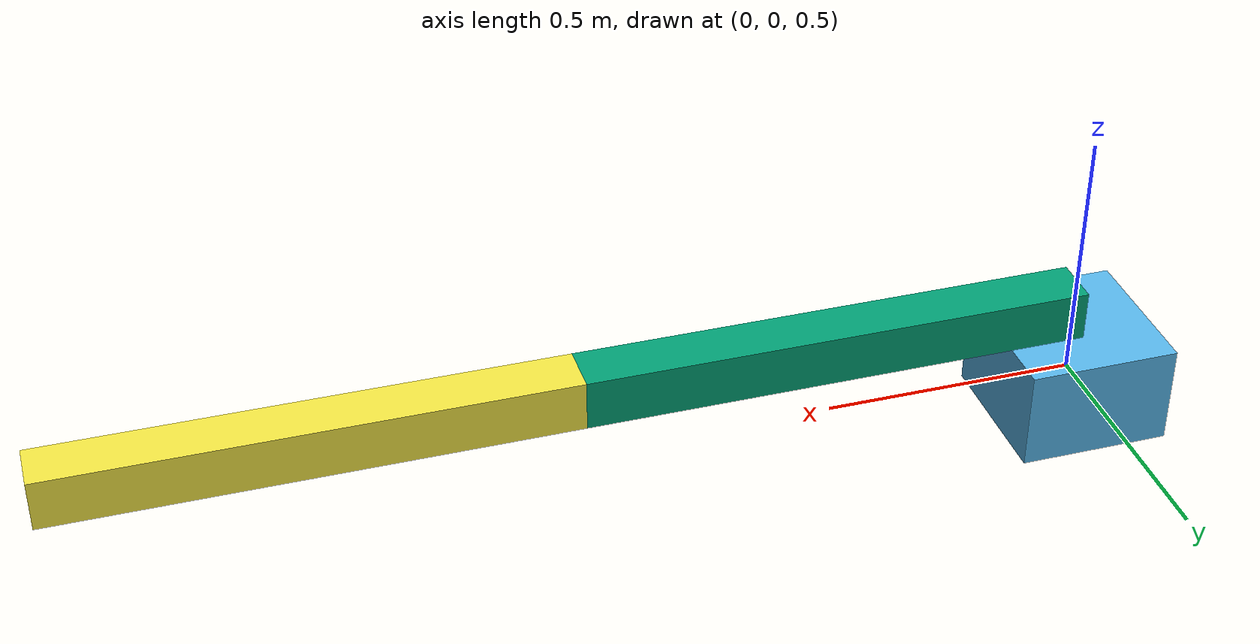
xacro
<?xml version="1.0"?>
<robot xmlns:xacro="http://www.ros.org/wiki/xacro"
       name="two_link_arm">
<link name="world"/>

<joint name="world_to_base" type="fixed">
  <parent link="world"/>
  <child link="base_link"/>
  <origin xyz="0 0 0.5" rpy="0 0 0"/>
</joint>
  <link name="base_link">
    <visual>
      <geometry>
        <box size="0.3 0.3 0.2"/>
      </geometry>
    </visual>
    <collision>
      <geometry>
        <box size="0.3 0.3 0.2"/>
      </geometry>
    </collision>
    <inertial>
      <origin xyz="0 0 0" rpy="0 0 0"/>
      <mass value="5.0"/>
      <inertia
        ixx="0.05417" ixy="0.0" ixz="0.0"
        iyy="0.05417" iyz="0.0"
        izz="0.075"/>
    </inertial>
  </link>
  <link name="link1">
    <visual>
      <origin xyz="0.5 0 0" rpy="0 0 0"/>
      <geometry>
        <box size="1.0 0.1 0.1"/>
      </geometry>
    </visual>
    <collision>
      <origin xyz="0.5 0 0" rpy="0 0 0"/>
      <geometry>
        <box size="1.0 0.1 0.1"/>
      </geometry>
    </collision>
    <inertial>
      <origin xyz="0.5 0 0" rpy="0 0 0"/>
      <mass value="1.0"/>
      <inertia
        ixx="0.001667" ixy="0.0" ixz="0.0"
        iyy="0.084167" iyz="0.0"
        izz="0.084167"/>
    </inertial>
  </link>
  <joint name="joint1" type="revolute">
    <parent link="base_link"/>
    <child link="link1"/>
    <origin xyz="0 0 0.15" rpy="0 0 0"/>
    <axis xyz="0 1 0"/>
    <limit lower="-3.14159" upper="3.14159"
           effort="100.0" velocity="2.0"/>
    <dynamics damping="0.1" friction="0.0"/>
  </joint>
  <link name="link2">
    <visual>
      <origin xyz="0.5 0 0" rpy="0 0 0"/>
      <geometry>
        <box size="1.0 0.1 0.1"/>
      </geometry>
    </visual>
    <collision>
      <origin xyz="0.5 0 0" rpy="0 0 0"/>
      <geometry>
        <box size="1.0 0.1 0.1"/>
      </geometry>
    </collision>
    <inertial>
      <origin xyz="0.5 0 0" rpy="0 0 0"/>
      <mass value="1.0"/>
      <inertia
        ixx="0.001667" ixy="0.0" ixz="0.0"
        iyy="0.084167" iyz="0.0"
        izz="0.084167"/>
    </inertial>
  </link>
  <joint name="joint2" type="revolute">
    <parent link="link1"/>
    <child link="link2"/>
    <origin xyz="1.0  0 0" rpy="0 0 0"/>
    <axis xyz="0 1 0"/>
    <limit lower="-3.14159" upper="3.14159"
           effort="100.0" velocity="2.0"/>
    <dynamics damping="0.1" friction="0.0"/>
  </joint>
  <ros2_control name="GazeboSystem" type="system">
    <hardware>
      <plugin>gz_ros2_control/GazeboSimSystem</plugin>
    </hardware>

    <joint name="joint1">
      <command_interface name="effort"/>
      <state_interface name="position"/>
      <state_interface name="velocity"/>
      <state_interface name="effort"/>
    </joint>

    <joint name="joint2">
      <command_interface name="effort"/>
      <state_interface name="position"/>
      <state_interface name="velocity"/>
      <state_interface name="effort"/>
    </joint>
  </ros2_control>
  <gazebo>
    <plugin filename="gz_ros2_control-system"
            name="gz_ros2_control::GazeboSimROS2ControlPlugin">
      <parameters>$(find two_link_arm_description)/config/controllers.yaml</parameters>
    </plugin>
  </gazebo>
</robot>
